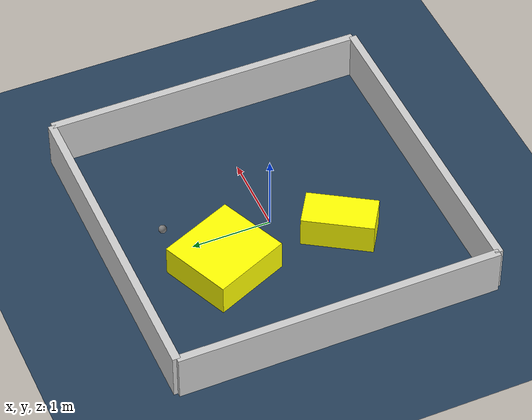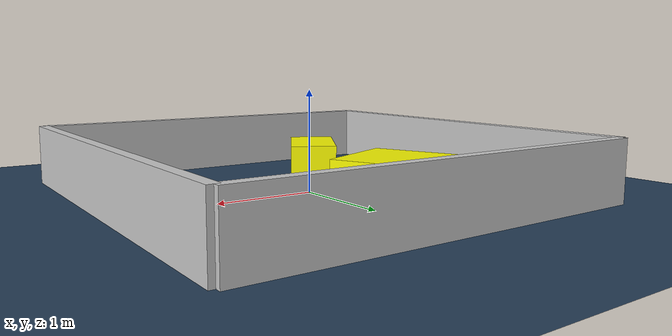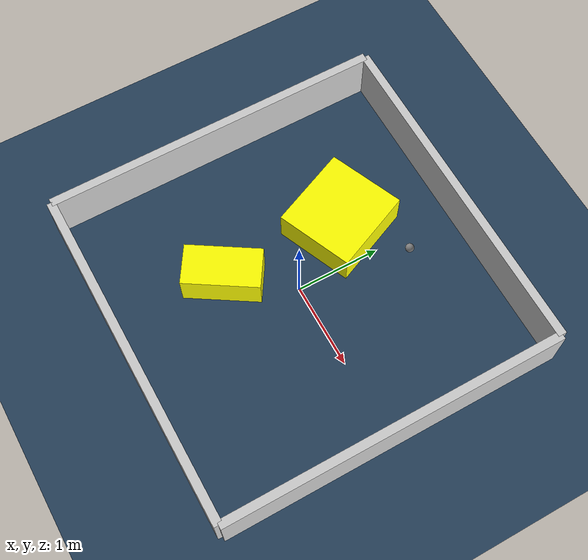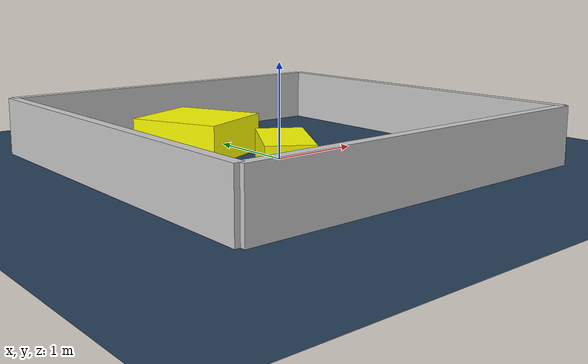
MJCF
<?xml version="1.0" ?>
<mujoco model="generated_environment">
  <option timestep="0.01" integrator="RK4" cone="elliptic"/>
  <default>
    <geom density="1"/>
  </default>
  <asset>
    <texture builtin="gradient" height="3072" rgb1="0.3 0.5 0.7" rgb2="0 0 0" type="skybox" width="512"/>
    <texture builtin="checker" height="300" mark="edge" markrgb="0.8 0.8 0.8" name="groundplane" rgb1="0.2 0.3 0.4" rgb2="0.1 0.2 0.3" type="2d" width="300"/>
    <material name="groundplane" reflectance="0.2" texrepeat="5 5" texture="groundplane" texuniform="true"/>
    <material name="robot" rgba="0.0 1.0 0.0 1"/>
  </asset>
  <worldbody>
    <light dir="0 0 -1" directional="true" pos="0 0 1.5"/>
    <geom condim="4" friction="1.0 0.005 0.001" material="groundplane" name="floor" size="0 0 0.05" type="plane"/>
    <body name="walls">
      <geom name="wall_1" condim="4" pos="-2.0 0.0 0.3" rgba="0.800000011920929 0.800000011920929 0.800000011920929 1.0" size="0.05 2.0 0.3" type="box"/>
      <geom name="wall_2" condim="4" pos="2.0 0.0 0.3" rgba="0.800000011920929 0.800000011920929 0.800000011920929 1.0" size="0.05 2.0 0.3" type="box"/>
      <geom name="wall_3" condim="4" pos="0.0 -2.0 0.3" rgba="0.800000011920929 0.800000011920929 0.800000011920929 1.0" size="2.0 0.05 0.3" type="box"/>
      <geom name="wall_4" condim="4" pos="0.0 2.0 0.3" rgba="0.800000011920929 0.800000011920929 0.800000011920929 1.0" size="2.0 0.05 0.3" type="box"/>
    </body>
    <body name="robot">
      <joint name="joint_x" type="slide" pos="0 0 0" axis="1 0 0"/>
      <joint name="joint_y" type="slide" pos="0 0 0" axis="0 1 0"/>
      <geom name="robot" type="sphere" pos="0.233807605374575 1.2819907201984062 0.2" size="0.05" mass="5." friction="1.0 0.005 0.0001" condim="4"/>
      <site name="sensor_ball"/>
    </body>
    <body name="obstacle_1_movable">
      <geom name="obstacle_1_movable" condim="4" pos="-0.4803930630875126 0.7942853178740517 0.2" euler="0 0 293.16838794672424" friction="1.0 0.005 0.001" rgba="1 1 0 1" size="0.49393013637753463 0.46064617640014055 0.2" type="box" mass="0.1"/>
      <joint type="free"/>
    </body>
    <body name="obstacle_2_movable">
      <geom name="obstacle_2_movable" condim="4" pos="-0.5015068311367743 -0.6818927990799286 0.2" euler="0 0 237.5091537799645" friction="1.0 0.005 0.001" rgba="1 1 0 1" size="0.4390761213662506 0.23377395261608067 0.2" type="box" mass="0.1"/>
      <joint type="free"/>
    </body>
  </worldbody>
  <actuator>
    <motor name="actuator_x" joint="joint_x" gear="1" ctrlrange="-1 1"/>
    <motor name="actuator_y" joint="joint_y" gear="1" ctrlrange="-1 1"/>
  </actuator>
</mujoco>
